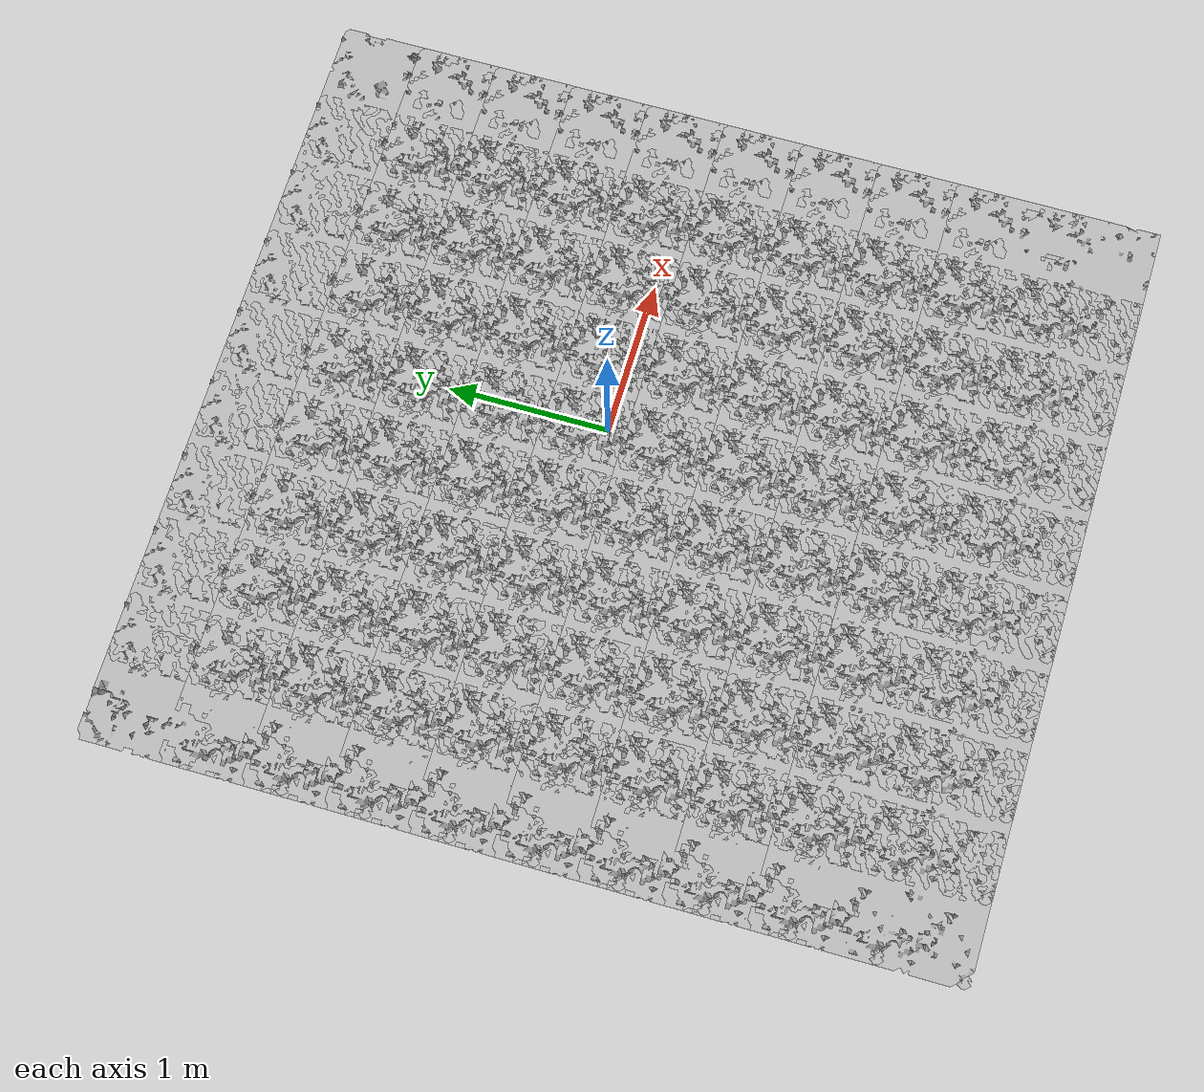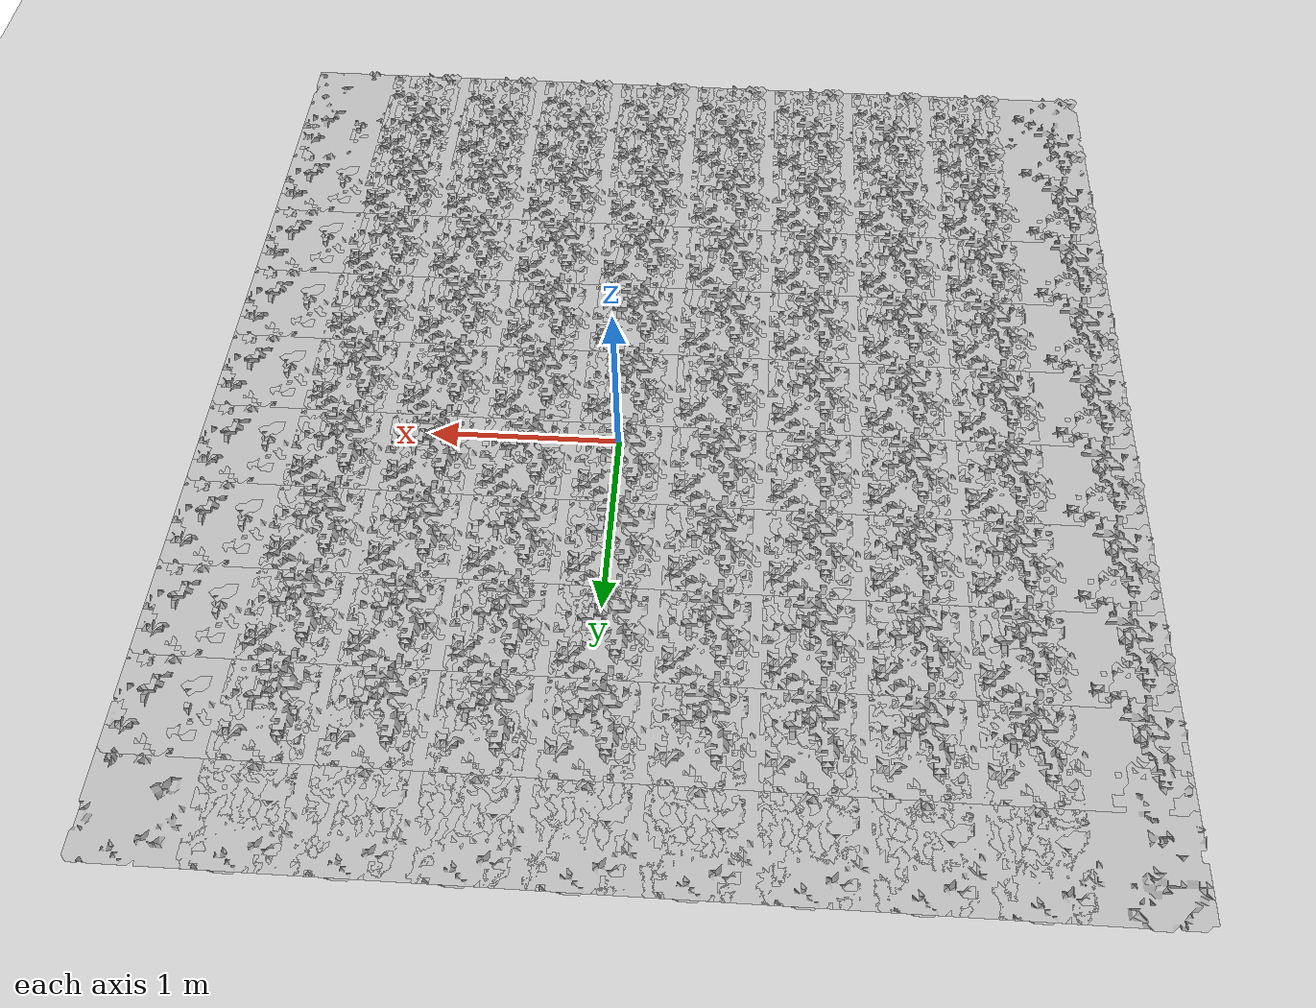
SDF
<sdf version="1.6">
 <world name="default">
  <light name="sun" type="directional">
   <pose>0 0 10 0 -0 0</pose>
   <diffuse>0.8 0.8 0.8 1</diffuse>
   <specular>0.2 0.2 0.2 1</specular>
   <attenuation>
    <range>1000</range>
    <constant>0.9</constant>
    <linear>0.01</linear>
    <quadratic>0.001</quadratic>
   </attenuation>
   <direction>-0.5 0.1 -0.9</direction>
  </light>
  <model name="ground_plane">
   <static>1</static>
   <link name="link">
    <collision name="collision">
     <geometry><plane><normal>0 0 1</normal><size>100 100</size></plane></geometry>
     <surface>
      <contact><collide_bitmask>65535</collide_bitmask></contact>
      <friction><ode><mu>100</mu><mu2>50</mu2></ode></friction>
     </surface>
    </collision>
    <visual name="visual">
     <cast_shadows>0</cast_shadows>
     <geometry><plane><normal>0 0 1</normal><size>100 100</size></plane></geometry>
     <material>
      <script><uri>file://media/materials/scripts/gazebo.material</uri><name>Gazebo/Grey</name></script>
     </material>
    </visual>
   </link>
  </model>
  <gravity>0 0 -9.8</gravity>
  <magnetic_field>6e-06 2.3e-05 -4.2e-05</magnetic_field>
  <atmosphere type="adiabatic"/>
  <physics name="default_physics" default="0" type="ode">
   <max_step_size>0.001</max_step_size>
   <real_time_factor>1</real_time_factor>
   <real_time_update_rate>1000</real_time_update_rate>
  </physics>
  <scene><ambient>0.4 0.4 0.4 1</ambient><background>0.7 0.7 0.7 1</background><shadows>1</shadows></scene>
  <audio><device>default</device></audio>
  <spherical_coordinates>
   <surface_model>EARTH_WGS84</surface_model>
   <latitude_deg>0</latitude_deg>
   <longitude_deg>0</longitude_deg>
   <elevation>0</elevation>
   <heading_deg>0</heading_deg>
  </spherical_coordinates>
  <model name="my_terrain">
   <link name="base_link">
    <inertial>
     <pose>-0.25 -0.25 0 0 -0 0</pose>
     <mass>0.81</mass>
     <inertia>
      <ixx>2.16</ixx>
      <ixy>-0.810003</ixy>
      <ixz>0.809997</ixz>
      <iyy>2.16001</iyy>
      <iyz>-0.81</iyz>
      <izz>3.50999</izz>
     </inertia>
    </inertial>
    <collision name="base_link_fixed_joint_lump__my_terraini0j0_collision">
     <pose>-2.25 -2.25 0 1.5708 -0 0</pose>
     <geometry>
      <mesh>
       <scale>0.001 0.001 0.001</scale>
       <uri>/home/tim/EARL_ws/src/L3DP_EARL/earl_gazebo/stl/gravel_l.dae</uri>
      </mesh>
     </geometry>
    </collision>
    <collision name="base_link_fixed_joint_lump__my_terraini0j1_collision_1">
     <pose>-2.25 -1.75 0 1.5708 -0 0</pose>
     <geometry>
      <mesh>
       <scale>0.001 0.001 0.001</scale>
       <uri>/home/tim/EARL_ws/src/L3DP_EARL/earl_gazebo/stl/gravel_l.dae</uri>
      </mesh>
     </geometry>
    </collision>
    <collision name="base_link_fixed_joint_lump__my_terraini0j2_collision_2">
     <pose>-2.25 -1.25 0 1.5708 -0 0</pose>
     <geometry>
      <mesh>
       <scale>0.001 0.001 0.001</scale>
       <uri>/home/tim/EARL_ws/src/L3DP_EARL/earl_gazebo/stl/gravel_l.dae</uri>
      </mesh>
     </geometry>
    </collision>
    <collision name="base_link_fixed_joint_lump__my_terraini0j3_collision_3">
     <pose>-2.25 -0.75 0 1.5708 -0 0</pose>
     <geometry>
      <mesh>
       <scale>0.001 0.001 0.001</scale>
       <uri>/home/tim/EARL_ws/src/L3DP_EARL/earl_gazebo/stl/gravel_l.dae</uri>
      </mesh>
     </geometry>
    </collision>
    <collision name="base_link_fixed_joint_lump__my_terraini0j4_collision_4">
     <pose>-2.25 -0.25 0 1.5708 -0 0</pose>
     <geometry>
      <mesh>
       <scale>0.001 0.001 0.001</scale>
       <uri>/home/tim/EARL_ws/src/L3DP_EARL/earl_gazebo/stl/gravel_l.dae</uri>
      </mesh>
     </geometry>
    </collision>
    <collision name="base_link_fixed_joint_lump__my_terraini0j5_collision_5">
     <pose>-2.25 0.25 0 1.5708 -0 0</pose>
     <geometry>
      <mesh>
       <scale>0.001 0.001 0.001</scale>
       <uri>/home/tim/EARL_ws/src/L3DP_EARL/earl_gazebo/stl/gravel_l.dae</uri>
      </mesh>
     </geometry>
    </collision>
    <collision name="base_link_fixed_joint_lump__my_terraini0j6_collision_6">
     <pose>-2.25 0.75 0 1.5708 -0 0</pose>
     <geometry>
      <mesh>
       <scale>0.001 0.001 0.001</scale>
       <uri>/home/tim/EARL_ws/src/L3DP_EARL/earl_gazebo/stl/gravel_l.dae</uri>
      </mesh>
     </geometry>
    </collision>
    <collision name="base_link_fixed_joint_lump__my_terraini0j7_collision_7">
     <pose>-2.25 1.25 0 1.5708 -0 0</pose>
     <geometry>
      <mesh>
       <scale>0.001 0.001 0.001</scale>
       <uri>/home/tim/EARL_ws/src/L3DP_EARL/earl_gazebo/stl/gravel_l.dae</uri>
      </mesh>
     </geometry>
    </collision>
    <collision name="base_link_fixed_joint_lump__my_terraini0j8_collision_8">
     <pose>-2.25 1.75 0 1.5708 -0 0</pose>
     <geometry>
      <mesh>
       <scale>0.001 0.001 0.001</scale>
       <uri>/home/tim/EARL_ws/src/L3DP_EARL/earl_gazebo/stl/gravel_l.dae</uri>
      </mesh>
     </geometry>
    </collision>
    <collision name="base_link_fixed_joint_lump__my_terraini1j0_collision_9">
     <pose>-1.75 -2.25 0 1.5708 -0 0</pose>
     <geometry>
      <mesh>
       <scale>0.001 0.001 0.001</scale>
       <uri>/home/tim/EARL_ws/src/L3DP_EARL/earl_gazebo/stl/gravel_l.dae</uri>
      </mesh>
     </geometry>
    </collision>
    <collision name="base_link_fixed_joint_lump__my_terraini1j1_collision_10">
     <pose>-1.75 -1.75 0 1.5708 -0 0</pose>
     <geometry>
      <mesh>
       <scale>0.001 0.001 0.001</scale>
       <uri>/home/tim/EARL_ws/src/L3DP_EARL/earl_gazebo/stl/gravel_l.dae</uri>
      </mesh>
     </geometry>
    </collision>
    <collision name="base_link_fixed_joint_lump__my_terraini1j2_collision_11">
     <pose>-1.75 -1.25 0 1.5708 -0 0</pose>
     <geometry>
      <mesh>
       <scale>0.001 0.001 0.001</scale>
       <uri>/home/tim/EARL_ws/src/L3DP_EARL/earl_gazebo/stl/gravel_l.dae</uri>
      </mesh>
     </geometry>
    </collision>
    <collision name="base_link_fixed_joint_lump__my_terraini1j3_collision_12">
     <pose>-1.75 -0.75 0 1.5708 -0 0</pose>
     <geometry>
      <mesh>
       <scale>0.001 0.001 0.001</scale>
       <uri>/home/tim/EARL_ws/src/L3DP_EARL/earl_gazebo/stl/gravel_l.dae</uri>
      </mesh>
     </geometry>
    </collision>
    <collision name="base_link_fixed_joint_lump__my_terraini1j4_collision_13">
     <pose>-1.75 -0.25 0 1.5708 -0 0</pose>
     <geometry>
      <mesh>
       <scale>0.001 0.001 0.001</scale>
       <uri>/home/tim/EARL_ws/src/L3DP_EARL/earl_gazebo/stl/gravel_l.dae</uri>
      </mesh>
     </geometry>
    </collision>
    <collision name="base_link_fixed_joint_lump__my_terraini1j5_collision_14">
     <pose>-1.75 0.25 0 1.5708 -0 0</pose>
     <geometry>
      <mesh>
       <scale>0.001 0.001 0.001</scale>
       <uri>/home/tim/EARL_ws/src/L3DP_EARL/earl_gazebo/stl/gravel_l.dae</uri>
      </mesh>
     </geometry>
    </collision>
    <collision name="base_link_fixed_joint_lump__my_terraini1j6_collision_15">
     <pose>-1.75 0.75 0 1.5708 -0 0</pose>
     <geometry>
      <mesh>
       <scale>0.001 0.001 0.001</scale>
       <uri>/home/tim/EARL_ws/src/L3DP_EARL/earl_gazebo/stl/gravel_l.dae</uri>
      </mesh>
     </geometry>
    </collision>
    <collision name="base_link_fixed_joint_lump__my_terraini1j7_collision_16">
     <pose>-1.75 1.25 0 1.5708 -0 0</pose>
     <geometry>
      <mesh>
       <scale>0.001 0.001 0.001</scale>
       <uri>/home/tim/EARL_ws/src/L3DP_EARL/earl_gazebo/stl/gravel_l.dae</uri>
      </mesh>
     </geometry>
    </collision>
    <collision name="base_link_fixed_joint_lump__my_terraini1j8_collision_17">
     <pose>-1.75 1.75 0 1.5708 -0 0</pose>
     <geometry>
      <mesh>
       <scale>0.001 0.001 0.001</scale>
       <uri>/home/tim/EARL_ws/src/L3DP_EARL/earl_gazebo/stl/gravel_l.dae</uri>
      </mesh>
     </geometry>
    </collision>
    <collision name="base_link_fixed_joint_lump__my_terraini2j0_collision_18">
     <pose>-1.25 -2.25 0 1.5708 -0 0</pose>
     <geometry>
      <mesh>
       <scale>0.001 0.001 0.001</scale>
       <uri>/home/tim/EARL_ws/src/L3DP_EARL/earl_gazebo/stl/gravel_l.dae</uri>
      </mesh>
     </geometry>
    </collision>
    <collision name="base_link_fixed_joint_lump__my_terraini2j1_collision_19">
     <pose>-1.25 -1.75 0 1.5708 -0 0</pose>
     <geometry>
      <mesh>
       <scale>0.001 0.001 0.001</scale>
       <uri>/home/tim/EARL_ws/src/L3DP_EARL/earl_gazebo/stl/gravel_l.dae</uri>
      </mesh>
     </geometry>
    </collision>
    <collision name="base_link_fixed_joint_lump__my_terraini2j2_collision_20">
     <pose>-1.25 -1.25 0 1.5708 -0 0</pose>
     <geometry>
      <mesh>
       <scale>0.001 0.001 0.001</scale>
       <uri>/home/tim/EARL_ws/src/L3DP_EARL/earl_gazebo/stl/gravel_l.dae</uri>
      </mesh>
     </geometry>
    </collision>
    <collision name="base_link_fixed_joint_lump__my_terraini2j3_collision_21">
     <pose>-1.25 -0.75 0 1.5708 -0 0</pose>
     <geometry>
      <mesh>
       <scale>0.001 0.001 0.001</scale>
       <uri>/home/tim/EARL_ws/src/L3DP_EARL/earl_gazebo/stl/gravel_l.dae</uri>
      </mesh>
     </geometry>
    </collision>
    <collision name="base_link_fixed_joint_lump__my_terraini2j4_collision_22">
     <pose>-1.25 -0.25 0 1.5708 -0 0</pose>
     <geometry>
      <mesh>
       <scale>0.001 0.001 0.001</scale>
       <uri>/home/tim/EARL_ws/src/L3DP_EARL/earl_gazebo/stl/gravel_l.dae</uri>
      </mesh>
     </geometry>
    </collision>
    <collision name="base_link_fixed_joint_lump__my_terraini2j5_collision_23">
     <pose>-1.25 0.25 0 1.5708 -0 0</pose>
     <geometry>
      <mesh>
       <scale>0.001 0.001 0.001</scale>
       <uri>/home/tim/EARL_ws/src/L3DP_EARL/earl_gazebo/stl/gravel_l.dae</uri>
      </mesh>
     </geometry>
    </collision>
    <collision name="base_link_fixed_joint_lump__my_terraini2j6_collision_24">
     <pose>-1.25 0.75 0 1.5708 -0 0</pose>
     <geometry>
      <mesh>
       <scale>0.001 0.001 0.001</scale>
       <uri>/home/tim/EARL_ws/src/L3DP_EARL/earl_gazebo/stl/gravel_l.dae</uri>
      </mesh>
     </geometry>
    </collision>
    <collision name="base_link_fixed_joint_lump__my_terraini2j7_collision_25">
     <pose>-1.25 1.25 0 1.5708 -0 0</pose>
     <geometry>
      <mesh>
       <scale>0.001 0.001 0.001</scale>
       <uri>/home/tim/EARL_ws/src/L3DP_EARL/earl_gazebo/stl/gravel_l.dae</uri>
      </mesh>
     </geometry>
    </collision>
    <collision name="base_link_fixed_joint_lump__my_terraini2j8_collision_26">
     <pose>-1.25 1.75 0 1.5708 -0 0</pose>
     <geometry>
      <mesh>
       <scale>0.001 0.001 0.001</scale>
       <uri>/home/tim/EARL_ws/src/L3DP_EARL/earl_gazebo/stl/gravel_l.dae</uri>
      </mesh>
     </geometry>
    </collision>
    <collision name="base_link_fixed_joint_lump__my_terraini3j0_collision_27">
     <pose>-0.75 -2.25 0 1.5708 -0 0</pose>
     <geometry>
      <mesh>
       <scale>0.001 0.001 0.001</scale>
       <uri>/home/tim/EARL_ws/src/L3DP_EARL/earl_gazebo/stl/gravel_l.dae</uri>
      </mesh>
     </geometry>
    </collision>
    <collision name="base_link_fixed_joint_lump__my_terraini3j1_collision_28">
     <pose>-0.75 -1.75 0 1.5708 -0 0</pose>
     <geometry>
      <mesh>
       <scale>0.001 0.001 0.001</scale>
       <uri>/home/tim/EARL_ws/src/L3DP_EARL/earl_gazebo/stl/gravel_l.dae</uri>
      </mesh>
     </geometry>
    </collision>
    <collision name="base_link_fixed_joint_lump__my_terraini3j2_collision_29">
     <pose>-0.75 -1.25 0 1.5708 -0 0</pose>
     <geometry>
      <mesh>
       <scale>0.001 0.001 0.001</scale>
       <uri>/home/tim/EARL_ws/src/L3DP_EARL/earl_gazebo/stl/gravel_l.dae</uri>
      </mesh>
     </geometry>
    </collision>
    <collision name="base_link_fixed_joint_lump__my_terraini3j3_collision_30">
     <pose>-0.75 -0.75 0 1.5708 -0 0</pose>
     <geometry>
      <mesh>
       <scale>0.001 0.001 0.001</scale>
       <uri>/home/tim/EARL_ws/src/L3DP_EARL/earl_gazebo/stl/gravel_l.dae</uri>
      </mesh>
     </geometry>
    </collision>
    <collision name="base_link_fixed_joint_lump__my_terraini3j4_collision_31">
     <pose>-0.75 -0.25 0 1.5708 -0 0</pose>
     <geometry>
      <mesh>
       <scale>0.001 0.001 0.001</scale>
       <uri>/home/tim/EARL_ws/src/L3DP_EARL/earl_gazebo/stl/gravel_l.dae</uri>
      </mesh>
     </geometry>
    </collision>
    <collision name="base_link_fixed_joint_lump__my_terraini3j5_collision_32">
     <pose>-0.75 0.25 0 1.5708 -0 0</pose>
     <geometry>
      <mesh>
       <scale>0.001 0.001 0.001</scale>
       <uri>/home/tim/EARL_ws/src/L3DP_EARL/earl_gazebo/stl/gravel_l.dae</uri>
      </mesh>
     </geometry>
    </collision>
    <collision name="base_link_fixed_joint_lump__my_terraini3j6_collision_33">
     <pose>-0.75 0.75 0 1.5708 -0 0</pose>
     <geometry>
      <mesh>
       <scale>0.001 0.001 0.001</scale>
       <uri>/home/tim/EARL_ws/src/L3DP_EARL/earl_gazebo/stl/gravel_l.dae</uri>
      </mesh>
     </geometry>
    </collision>
    <collision name="base_link_fixed_joint_lump__my_terraini3j7_collision_34">
     <pose>-0.75 1.25 0 1.5708 -0 0</pose>
     <geometry>
      <mesh>
       <scale>0.001 0.001 0.001</scale>
       <uri>/home/tim/EARL_ws/src/L3DP_EARL/earl_gazebo/stl/gravel_l.dae</uri>
      </mesh>
     </geometry>
    </collision>
    <collision name="base_link_fixed_joint_lump__my_terraini3j8_collision_35">
     <pose>-0.75 1.75 0 1.5708 -0 0</pose>
     <geometry>
      <mesh>
       <scale>0.001 0.001 0.001</scale>
       <uri>/home/tim/EARL_ws/src/L3DP_EARL/earl_gazebo/stl/gravel_l.dae</uri>
      </mesh>
     </geometry>
    </collision>
    <collision name="base_link_fixed_joint_lump__my_terraini4j0_collision_36">
     <pose>-0.25 -2.25 0 1.5708 -0 0</pose>
     <geometry>
      <mesh>
       <scale>0.001 0.001 0.001</scale>
       <uri>/home/tim/EARL_ws/src/L3DP_EARL/earl_gazebo/stl/gravel_l.dae</uri>
      </mesh>
     </geometry>
    </collision>
    <collision name="base_link_fixed_joint_lump__my_terraini4j1_collision_37">
     <pose>-0.25 -1.75 0 1.5708 -0 0</pose>
     <geometry>
      <mesh>
       <scale>0.001 0.001 0.001</scale>
       <uri>/home/tim/EARL_ws/src/L3DP_EARL/earl_gazebo/stl/gravel_l.dae</uri>
      </mesh>
     </geometry>
    </collision>
    <collision name="base_link_fixed_joint_lump__my_terraini4j2_collision_38">
     <pose>-0.25 -1.25 0 1.5708 -0 0</pose>
     <geometry>
      <mesh>
       <scale>0.001 0.001 0.001</scale>
       <uri>/home/tim/EARL_ws/src/L3DP_EARL/earl_gazebo/stl/gravel_l.dae</uri>
      </mesh>
     </geometry>
    </collision>
    <collision name="base_link_fixed_joint_lump__my_terraini4j3_collision_39">
     <pose>-0.25 -0.75 0 1.5708 -0 0</pose>
     <geometry>
      <mesh>
       <scale>0.001 0.001 0.001</scale>
       <uri>/home/tim/EARL_ws/src/L3DP_EARL/earl_gazebo/stl/gravel_l.dae</uri>
      </mesh>
     </geometry>
    </collision>
    <collision name="base_link_fixed_joint_lump__my_terraini4j4_collision_40">
     <pose>-0.25 -0.25 0 1.5708 -0 0</pose>
     <geometry>
      <mesh>
       <scale>0.001 0.001 0.001</scale>
       <uri>/home/tim/EARL_ws/src/L3DP_EARL/earl_gazebo/stl/gravel_l.dae</uri>
      </mesh>
     </geometry>
    </collision>
    <collision name="base_link_fixed_joint_lump__my_terraini4j5_collision_41">
     <pose>-0.25 0.25 0 1.5708 -0 0</pose>
     <geometry>
      <mesh>
       <scale>0.001 0.001 0.001</scale>
       <uri>/home/tim/EARL_ws/src/L3DP_EARL/earl_gazebo/stl/gravel_l.dae</uri>
      </mesh>
     </geometry>
    </collision>
    <collision name="base_link_fixed_joint_lump__my_terraini4j6_collision_42">
     <pose>-0.25 0.75 0 1.5708 -0 0</pose>
     <geometry>
      <mesh>
       <scale>0.001 0.001 0.001</scale>
       <uri>/home/tim/EARL_ws/src/L3DP_EARL/earl_gazebo/stl/gravel_l.dae</uri>
      </mesh>
     </geometry>
    </collision>
    <collision name="base_link_fixed_joint_lump__my_terraini4j7_collision_43">
     <pose>-0.25 1.25 0 1.5708 -0 0</pose>
     <geometry>
      <mesh>
       <scale>0.001 0.001 0.001</scale>
       <uri>/home/tim/EARL_ws/src/L3DP_EARL/earl_gazebo/stl/gravel_l.dae</uri>
      </mesh>
     </geometry>
    </collision>
    <collision name="base_link_fixed_joint_lump__my_terraini4j8_collision_44">
     <pose>-0.25 1.75 0 1.5708 -0 0</pose>
     <geometry>
      <mesh>
       <scale>0.001 0.001 0.001</scale>
       <uri>/home/tim/EARL_ws/src/L3DP_EARL/earl_gazebo/stl/gravel_l.dae</uri>
      </mesh>
     </geometry>
    </collision>
    <collision name="base_link_fixed_joint_lump__my_terraini5j0_collision_45">
     <pose>0.25 -2.25 0 1.5708 -0 0</pose>
     <geometry>
      <mesh>
       <scale>0.001 0.001 0.001</scale>
       <uri>/home/tim/EARL_ws/src/L3DP_EARL/earl_gazebo/stl/gravel_l.dae</uri>
      </mesh>
     </geometry>
    </collision>
    <collision name="base_link_fixed_joint_lump__my_terraini5j1_collision_46">
     <pose>0.25 -1.75 0 1.5708 -0 0</pose>
     <geometry>
      <mesh>
       <scale>0.001 0.001 0.001</scale>
       <uri>/home/tim/EARL_ws/src/L3DP_EARL/earl_gazebo/stl/gravel_l.dae</uri>
      </mesh>
     </geometry>
    </collision>
    <collision name="base_link_fixed_joint_lump__my_terraini5j2_collision_47">
     <pose>0.25 -1.25 0 1.5708 -0 0</pose>
     <geometry>
      <mesh>
       <scale>0.001 0.001 0.001</scale>
       <uri>/home/tim/EARL_ws/src/L3DP_EARL/earl_gazebo/stl/gravel_l.dae</uri>
      </mesh>
     </geometry>
    </collision>
    <collision name="base_link_fixed_joint_lump__my_terraini5j3_collision_48">
     <pose>0.25 -0.75 0 1.5708 -0 0</pose>
     <geometry>
      <mesh>
       <scale>0.001 0.001 0.001</scale>
       <uri>/home/tim/EARL_ws/src/L3DP_EARL/earl_gazebo/stl/gravel_l.dae</uri>
      </mesh>
     </geometry>
    </collision>
    <collision name="base_link_fixed_joint_lump__my_terraini5j4_collision_49">
     <pose>0.25 -0.25 0 1.5708 -0 0</pose>
     <geometry>
      <mesh>
       <scale>0.001 0.001 0.001</scale>
       <uri>/home/tim/EARL_ws/src/L3DP_EARL/earl_gazebo/stl/gravel_l.dae</uri>
      </mesh>
     </geometry>
    </collision>
    <collision name="base_link_fixed_joint_lump__my_terraini5j5_collision_50">
     <pose>0.25 0.25 0 1.5708 -0 0</pose>
     <geometry>
      <mesh>
       <scale>0.001 0.001 0.001</scale>
       <uri>/home/tim/EARL_ws/src/L3DP_EARL/earl_gazebo/stl/gravel_l.dae</uri>
      </mesh>
     </geometry>
    </collision>
    <collision name="base_link_fixed_joint_lump__my_terraini5j6_collision_51">
     <pose>0.25 0.75 0 1.5708 -0 0</pose>
     <geometry>
      <mesh>
       <scale>0.001 0.001 0.001</scale>
       <uri>/home/tim/EARL_ws/src/L3DP_EARL/earl_gazebo/stl/gravel_l.dae</uri>
      </mesh>
     </geometry>
    </collision>
    <collision name="base_link_fixed_joint_lump__my_terraini5j7_collision_52">
     <pose>0.25 1.25 0 1.5708 -0 0</pose>
     <geometry>
      <mesh>
       <scale>0.001 0.001 0.001</scale>
       <uri>/home/tim/EARL_ws/src/L3DP_EARL/earl_gazebo/stl/gravel_l.dae</uri>
      </mesh>
     </geometry>
    </collision>
    <collision name="base_link_fixed_joint_lump__my_terraini5j8_collision_53">
     <pose>0.25 1.75 0 1.5708 -0 0</pose>
     <geometry>
      <mesh>
       <scale>0.001 0.001 0.001</scale>
       <uri>/home/tim/EARL_ws/src/L3DP_EARL/earl_gazebo/stl/gravel_l.dae</uri>
      </mesh>
     </geometry>
    </collision>
    <collision name="base_link_fixed_joint_lump__my_terraini6j0_collision_54">
     <pose>0.75 -2.25 0 1.5708 -0 0</pose>
     <geometry>
      <mesh>
       <scale>0.001 0.001 0.001</scale>
       <uri>/home/tim/EARL_ws/src/L3DP_EARL/earl_gazebo/stl/gravel_l.dae</uri>
      </mesh>
     </geometry>
    </collision>
    <collision name="base_link_fixed_joint_lump__my_terraini6j1_collision_55">
     <pose>0.75 -1.75 0 1.5708 -0 0</pose>
     <geometry>
      <mesh>
       <scale>0.001 0.001 0.001</scale>
       <uri>/home/tim/EARL_ws/src/L3DP_EARL/earl_gazebo/stl/gravel_l.dae</uri>
      </mesh>
     </geometry>
    </collision>
    <collision name="base_link_fixed_joint_lump__my_terraini6j2_collision_56">
     <pose>0.75 -1.25 0 1.5708 -0 0</pose>
     <geometry>
      <mesh>
       <scale>0.001 0.001 0.001</scale>
       <uri>/home/tim/EARL_ws/src/L3DP_EARL/earl_gazebo/stl/gravel_l.dae</uri>
      </mesh>
     </geometry>
    </collision>
    <collision name="base_link_fixed_joint_lump__my_terraini6j3_collision_57">
     <pose>0.75 -0.75 0 1.5708 -0 0</pose>
     <geometry>
      <mesh>
       <scale>0.001 0.001 0.001</scale>
       <uri>/home/tim/EARL_ws/src/L3DP_EARL/earl_gazebo/stl/gravel_l.dae</uri>
      </mesh>
     </geometry>
    </collision>
    <collision name="base_link_fixed_joint_lump__my_terraini6j4_collision_58">
     <pose>0.75 -0.25 0 1.5708 -0 0</pose>
     <geometry>
      <mesh>
       <scale>0.001 0.001 0.001</scale>
       <uri>/home/tim/EARL_ws/src/L3DP_EARL/earl_gazebo/stl/gravel_l.dae</uri>
      </mesh>
     </geometry>
    </collision>
    <collision name="base_link_fixed_joint_lump__my_terraini6j5_collision_59">
     <pose>0.75 0.25 0 1.5708 -0 0</pose>
     <geometry>
      <mesh>
       <scale>0.001 0.001 0.001</scale>
       <uri>/home/tim/EARL_ws/src/L3DP_EARL/earl_gazebo/stl/gravel_l.dae</uri>
      </mesh>
     </geometry>
    </collision>
    <collision name="base_link_fixed_joint_lump__my_terraini6j6_collision_60">
     <pose>0.75 0.75 0 1.5708 -0 0</pose>
     <geometry>
      <mesh>
       <scale>0.001 0.001 0.001</scale>
       <uri>/home/tim/EARL_ws/src/L3DP_EARL/earl_gazebo/stl/gravel_l.dae</uri>
      </mesh>
     </geometry>
    </collision>
    <collision name="base_link_fixed_joint_lump__my_terraini6j7_collision_61">
     <pose>0.75 1.25 0 1.5708 -0 0</pose>
     <geometry>
      <mesh>
       <scale>0.001 0.001 0.001</scale>
       <uri>/home/tim/EARL_ws/src/L3DP_EARL/earl_gazebo/stl/gravel_l.dae</uri>
      </mesh>
     </geometry>
    </collision>
    <collision name="base_link_fixed_joint_lump__my_terraini6j8_collision_62">
     <pose>0.75 1.75 0 1.5708 -0 0</pose>
     <geometry>
      <mesh>
       <scale>0.001 0.001 0.001</scale>
       <uri>/home/tim/EARL_ws/src/L3DP_EARL/earl_gazebo/stl/gravel_l.dae</uri>
      </mesh>
     </geometry>
    </collision>
    <collision name="base_link_fixed_joint_lump__my_terraini7j0_collision_63">
     <pose>1.25 -2.25 0 1.5708 -0 0</pose>
     <geometry>
      <mesh>
       <scale>0.001 0.001 0.001</scale>
       <uri>/home/tim/EARL_ws/src/L3DP_EARL/earl_gazebo/stl/gravel_l.dae</uri>
      </mesh>
     </geometry>
    </collision>
    <collision name="base_link_fixed_joint_lump__my_terraini7j1_collision_64">
     <pose>1.25 -1.75 0 1.5708 -0 0</pose>
     <geometry>
      <mesh>
       <scale>0.001 0.001 0.001</scale>
       <uri>/home/tim/EARL_ws/src/L3DP_EARL/earl_gazebo/stl/gravel_l.dae</uri>
      </mesh>
     </geometry>
    </collision>
    <collision name="base_link_fixed_joint_lump__my_terraini7j2_collision_65">
     <pose>1.25 -1.25 0 1.5708 -0 0</pose>
     <geometry>
      <mesh>
       <scale>0.001 0.001 0.001</scale>
       <uri>/home/tim/EARL_ws/src/L3DP_EARL/earl_gazebo/stl/gravel_l.dae</uri>
      </mesh>
     </geometry>
    </collision>
    <collision name="base_link_fixed_joint_lump__my_terraini7j3_collision_66">
     <pose>1.25 -0.75 0 1.5708 -0 0</pose>
     <geometry>
      <mesh>
       <scale>0.001 0.001 0.001</scale>
       <uri>/home/tim/EARL_ws/src/L3DP_EARL/earl_gazebo/stl/gravel_l.dae</uri>
      </mesh>
     </geometry>
    </collision>
    <collision name="base_link_fixed_joint_lump__my_terraini7j4_collision_67">
     <pose>1.25 -0.25 0 1.5708 -0 0</pose>
     <geometry>
      <mesh>
       <scale>0.001 0.001 0.001</scale>
       <uri>/home/tim/EARL_ws/src/L3DP_EARL/earl_gazebo/stl/gravel_l.dae</uri>
      </mesh>
     </geometry>
    </collision>
    <collision name="base_link_fixed_joint_lump__my_terraini7j5_collision_68">
     <pose>1.25 0.25 0 1.5708 -0 0</pose>
     <geometry>
      <mesh>
       <scale>0.001 0.001 0.001</scale>
       <uri>/home/tim/EARL_ws/src/L3DP_EARL/earl_gazebo/stl/gravel_l.dae</uri>
      </mesh>
     </geometry>
    </collision>
    <collision name="base_link_fixed_joint_lump__my_terraini7j6_collision_69">
     <pose>1.25 0.75 0 1.5708 -0 0</pose>
     <geometry>
      <mesh>
       <scale>0.001 0.001 0.001</scale>
       <uri>/home/tim/EARL_ws/src/L3DP_EARL/earl_gazebo/stl/gravel_l.dae</uri>
      </mesh>
     </geometry>
    </collision>
    <collision name="base_link_fixed_joint_lump__my_terraini7j7_collision_70">
     <pose>1.25 1.25 0 1.5708 -0 0</pose>
     <geometry>
      <mesh>
       <scale>0.001 0.001 0.001</scale>
       <uri>/home/tim/EARL_ws/src/L3DP_EARL/earl_gazebo/stl/gravel_l.dae</uri>
      </mesh>
     </geometry>
    </collision>
    <collision name="base_link_fixed_joint_lump__my_terraini7j8_collision_71">
     <pose>1.25 1.75 0 1.5708 -0 0</pose>
     <geometry>
      <mesh>
       <scale>0.001 0.001 0.001</scale>
       <uri>/home/tim/EARL_ws/src/L3DP_EARL/earl_gazebo/stl/gravel_l.dae</uri>
      </mesh>
     </geometry>
    </collision>
    <collision name="base_link_fixed_joint_lump__my_terraini8j0_collision_72">
     <pose>1.75 -2.25 0 1.5708 -0 0</pose>
     <geometry>
      <mesh>
       <scale>0.001 0.001 0.001</scale>
       <uri>/home/tim/EARL_ws/src/L3DP_EARL/earl_gazebo/stl/gravel_l.dae</uri>
      </mesh>
     </geometry>
    </collision>
    <collision name="base_link_fixed_joint_lump__my_terraini8j1_collision_73">
     <pose>1.75 -1.75 0 1.5708 -0 0</pose>
     <geometry>
      <mesh>
       <scale>0.001 0.001 0.001</scale>
       <uri>/home/tim/EARL_ws/src/L3DP_EARL/earl_gazebo/stl/gravel_l.dae</uri>
      </mesh>
     </geometry>
    </collision>
    <collision name="base_link_fixed_joint_lump__my_terraini8j2_collision_74">
     <pose>1.75 -1.25 0 1.5708 -0 0</pose>
     <geometry>
      <mesh>
       <scale>0.001 0.001 0.001</scale>
       <uri>/home/tim/EARL_ws/src/L3DP_EARL/earl_gazebo/stl/gravel_l.dae</uri>
      </mesh>
     </geometry>
    </collision>
    <collision name="base_link_fixed_joint_lump__my_terraini8j3_collision_75">
     <pose>1.75 -0.75 0 1.5708 -0 0</pose>
     <geometry>
      <mesh>
       <scale>0.001 0.001 0.001</scale>
       <uri>/home/tim/EARL_ws/src/L3DP_EARL/earl_gazebo/stl/gravel_l.dae</uri>
      </mesh>
     </geometry>
    </collision>
    <collision name="base_link_fixed_joint_lump__my_terraini8j4_collision_76">
     <pose>1.75 -0.25 0 1.5708 -0 0</pose>
     <geometry>
      <mesh>
       <scale>0.001 0.001 0.001</scale>
       <uri>/home/tim/EARL_ws/src/L3DP_EARL/earl_gazebo/stl/gravel_l.dae</uri>
      </mesh>
     </geometry>
    </collision>
    <collision name="base_link_fixed_joint_lump__my_terraini8j5_collision_77">
     <pose>1.75 0.25 0 1.5708 -0 0</pose>
     <geometry>
      <mesh>
       <scale>0.001 0.001 0.001</scale>
       <uri>/home/tim/EARL_ws/src/L3DP_EARL/earl_gazebo/stl/gravel_l.dae</uri>
      </mesh>
     </geometry>
    </collision>
    <collision name="base_link_fixed_joint_lump__my_terraini8j6_collision_78">
     <pose>1.75 0.75 0 1.5708 -0 0</pose>
     <geometry>
      <mesh>
       <scale>0.001 0.001 0.001</scale>
       <uri>/home/tim/EARL_ws/src/L3DP_EARL/earl_gazebo/stl/gravel_l.dae</uri>
      </mesh>
     </geometry>
    </collision>
    <collision name="base_link_fixed_joint_lump__my_terraini8j7_collision_79">
     <pose>1.75 1.25 0 1.5708 -0 0</pose>
     <geometry>
      <mesh>
       <scale>0.001 0.001 0.001</scale>
       <uri>/home/tim/EARL_ws/src/L3DP_EARL/earl_gazebo/stl/gravel_l.dae</uri>
      </mesh>
     </geometry>
    </collision>
    <collision name="base_link_fixed_joint_lump__my_terraini8j8_collision_80">
     <pose>1.75 1.75 0 1.5708 -0 0</pose>
     <geometry>
      <mesh>
       <scale>0.001 0.001 0.001</scale>
       <uri>/home/tim/EARL_ws/src/L3DP_EARL/earl_gazebo/stl/gravel_l.dae</uri>
      </mesh>
     </geometry>
    </collision>
    <visual name="base_link_fixed_joint_lump__my_terraini0j0_visual">
     <pose>-2.25 -2.25 0 1.5708 -0 0</pose>
     <geometry>
      <mesh>
       <scale>0.001 0.001 0.001</scale>
       <uri>/home/tim/EARL_ws/src/L3DP_EARL/earl_gazebo/stl/gravel_l.dae</uri>
      </mesh>
     </geometry>
    </visual>
    <visual name="base_link_fixed_joint_lump__my_terraini0j1_visual_1">
     <pose>-2.25 -1.75 0 1.5708 -0 0</pose>
     <geometry>
      <mesh>
       <scale>0.001 0.001 0.001</scale>
       <uri>/home/tim/EARL_ws/src/L3DP_EARL/earl_gazebo/stl/gravel_l.dae</uri>
      </mesh>
     </geometry>
    </visual>
    <visual name="base_link_fixed_joint_lump__my_terraini0j2_visual_2">
     <pose>-2.25 -1.25 0 1.5708 -0 0</pose>
     <geometry>
      <mesh>
       <scale>0.001 0.001 0.001</scale>
       <uri>/home/tim/EARL_ws/src/L3DP_EARL/earl_gazebo/stl/gravel_l.dae</uri>
      </mesh>
     </geometry>
    </visual>
    <visual name="base_link_fixed_joint_lump__my_terraini0j3_visual_3">
     <pose>-2.25 -0.75 0 1.5708 -0 0</pose>
     <geometry>
      <mesh>
       <scale>0.001 0.001 0.001</scale>
       <uri>/home/tim/EARL_ws/src/L3DP_EARL/earl_gazebo/stl/gravel_l.dae</uri>
      </mesh>
     </geometry>
    </visual>
    <visual name="base_link_fixed_joint_lump__my_terraini0j4_visual_4">
     <pose>-2.25 -0.25 0 1.5708 -0 0</pose>
     <geometry>
      <mesh>
       <scale>0.001 0.001 0.001</scale>
       <uri>/home/tim/EARL_ws/src/L3DP_EARL/earl_gazebo/stl/gravel_l.dae</uri>
      </mesh>
     </geometry>
    </visual>
    <visual name="base_link_fixed_joint_lump__my_terraini0j5_visual_5">
     <pose>-2.25 0.25 0 1.5708 -0 0</pose>
     <geometry>
      <mesh>
       <scale>0.001 0.001 0.001</scale>
       <uri>/home/tim/EARL_ws/src/L3DP_EARL/earl_gazebo/stl/gravel_l.dae</uri>
      </mesh>
     </geometry>
    </visual>
    <visual name="base_link_fixed_joint_lump__my_terraini0j6_visual_6">
     <pose>-2.25 0.75 0 1.5708 -0 0</pose>
     <geometry>
      <mesh>
       <scale>0.001 0.001 0.001</scale>
       <uri>/home/tim/EARL_ws/src/L3DP_EARL/earl_gazebo/stl/gravel_l.dae</uri>
      </mesh>
     </geometry>
    </visual>
    <visual name="base_link_fixed_joint_lump__my_terraini0j7_visual_7">
     <pose>-2.25 1.25 0 1.5708 -0 0</pose>
     <geometry>
      <mesh>
       <scale>0.001 0.001 0.001</scale>
       <uri>/home/tim/EARL_ws/src/L3DP_EARL/earl_gazebo/stl/gravel_l.dae</uri>
      </mesh>
     </geometry>
    </visual>
    <visual name="base_link_fixed_joint_lump__my_terraini0j8_visual_8">
     <pose>-2.25 1.75 0 1.5708 -0 0</pose>
     <geometry>
      <mesh>
       <scale>0.001 0.001 0.001</scale>
       <uri>/home/tim/EARL_ws/src/L3DP_EARL/earl_gazebo/stl/gravel_l.dae</uri>
      </mesh>
     </geometry>
    </visual>
    <visual name="base_link_fixed_joint_lump__my_terraini1j0_visual_9">
     <pose>-1.75 -2.25 0 1.5708 -0 0</pose>
     <geometry>
      <mesh>
       <scale>0.001 0.001 0.001</scale>
       <uri>/home/tim/EARL_ws/src/L3DP_EARL/earl_gazebo/stl/gravel_l.dae</uri>
      </mesh>
     </geometry>
    </visual>
    <visual name="base_link_fixed_joint_lump__my_terraini1j1_visual_10">
     <pose>-1.75 -1.75 0 1.5708 -0 0</pose>
     <geometry>
      <mesh>
       <scale>0.001 0.001 0.001</scale>
       <uri>/home/tim/EARL_ws/src/L3DP_EARL/earl_gazebo/stl/gravel_l.dae</uri>
      </mesh>
     </geometry>
    </visual>
    <visual name="base_link_fixed_joint_lump__my_terraini1j2_visual_11">
     <pose>-1.75 -1.25 0 1.5708 -0 0</pose>
     <geometry>
      <mesh>
       <scale>0.001 0.001 0.001</scale>
       <uri>/home/tim/EARL_ws/src/L3DP_EARL/earl_gazebo/stl/gravel_l.dae</uri>
      </mesh>
     </geometry>
    </visual>
    <visual name="base_link_fixed_joint_lump__my_terraini1j3_visual_12">
     <pose>-1.75 -0.75 0 1.5708 -0 0</pose>
     <geometry>
      <mesh>
       <scale>0.001 0.001 0.001</scale>
       <uri>/home/tim/EARL_ws/src/L3DP_EARL/earl_gazebo/stl/gravel_l.dae</uri>
      </mesh>
     </geometry>
    </visual>
    <visual name="base_link_fixed_joint_lump__my_terraini1j4_visual_13">
     <pose>-1.75 -0.25 0 1.5708 -0 0</pose>
     <geometry>
      <mesh>
       <scale>0.001 0.001 0.001</scale>
       <uri>/home/tim/EARL_ws/src/L3DP_EARL/earl_gazebo/stl/gravel_l.dae</uri>
      </mesh>
     </geometry>
    </visual>
    <visual name="base_link_fixed_joint_lump__my_terraini1j5_visual_14">
     <pose>-1.75 0.25 0 1.5708 -0 0</pose>
     <geometry>
      <mesh>
       <scale>0.001 0.001 0.001</scale>
       <uri>/home/tim/EARL_ws/src/L3DP_EARL/earl_gazebo/stl/gravel_l.dae</uri>
      </mesh>
     </geometry>
    </visual>
    <visual name="base_link_fixed_joint_lump__my_terraini1j6_visual_15">
     <pose>-1.75 0.75 0 1.5708 -0 0</pose>
     <geometry>
      <mesh>
       <scale>0.001 0.001 0.001</scale>
       <uri>/home/tim/EARL_ws/src/L3DP_EARL/earl_gazebo/stl/gravel_l.dae</uri>
      </mesh>
     </geometry>
    </visual>
    <visual name="base_link_fixed_joint_lump__my_terraini1j7_visual_16">
     <pose>-1.75 1.25 0 1.5708 -0 0</pose>
     <geometry>
      <mesh>
       <scale>0.001 0.001 0.001</scale>
       <uri>/home/tim/EARL_ws/src/L3DP_EARL/earl_gazebo/stl/gravel_l.dae</uri>
      </mesh>
     </geometry>
    </visual>
    <visual name="base_link_fixed_joint_lump__my_terraini1j8_visual_17">
     <pose>-1.75 1.75 0 1.5708 -0 0</pose>
     <geometry>
      <mesh>
       <scale>0.001 0.001 0.001</scale>
       <uri>/home/tim/EARL_ws/src/L3DP_EARL/earl_gazebo/stl/gravel_l.dae</uri>
      </mesh>
     </geometry>
    </visual>
    <visual name="base_link_fixed_joint_lump__my_terraini2j0_visual_18">
     <pose>-1.25 -2.25 0 1.5708 -0 0</pose>
     <geometry>
      <mesh>
       <scale>0.001 0.001 0.001</scale>
       <uri>/home/tim/EARL_ws/src/L3DP_EARL/earl_gazebo/stl/gravel_l.dae</uri>
      </mesh>
     </geometry>
    </visual>
    <visual name="base_link_fixed_joint_lump__my_terraini2j1_visual_19">
     <pose>-1.25 -1.75 0 1.5708 -0 0</pose>
     <geometry>
      <mesh>
       <scale>0.001 0.001 0.001</scale>
       <uri>/home/tim/EARL_ws/src/L3DP_EARL/earl_gazebo/stl/gravel_l.dae</uri>
      </mesh>
     </geometry>
    </visual>
    <visual name="base_link_fixed_joint_lump__my_terraini2j2_visual_20">
     <pose>-1.25 -1.25 0 1.5708 -0 0</pose>
     <geometry>
      <mesh>
       <scale>0.001 0.001 0.001</scale>
       <uri>/home/tim/EARL_ws/src/L3DP_EARL/earl_gazebo/stl/gravel_l.dae</uri>
      </mesh>
     </geometry>
    </visual>
    <visual name="base_link_fixed_joint_lump__my_terraini2j3_visual_21">
     <pose>-1.25 -0.75 0 1.5708 -0 0</pose>
     <geometry>
      <mesh>
       <scale>0.001 0.001 0.001</scale>
       <uri>/home/tim/EARL_ws/src/L3DP_EARL/earl_gazebo/stl/gravel_l.dae</uri>
      </mesh>
     </geometry>
    </visual>
    <visual name="base_link_fixed_joint_lump__my_terraini2j4_visual_22">
     <pose>-1.25 -0.25 0 1.5708 -0 0</pose>
     <geometry>
      <mesh>
       <scale>0.001 0.001 0.001</scale>
       <uri>/home/tim/EARL_ws/src/L3DP_EARL/earl_gazebo/stl/gravel_l.dae</uri>
      </mesh>
     </geometry>
    </visual>
    <visual name="base_link_fixed_joint_lump__my_terraini2j5_visual_23">
     <pose>-1.25 0.25 0 1.5708 -0 0</pose>
     <geometry>
      <mesh>
       <scale>0.001 0.001 0.001</scale>
       <uri>/home/tim/EARL_ws/src/L3DP_EARL/earl_gazebo/stl/gravel_l.dae</uri>
      </mesh>
     </geometry>
    </visual>
    <visual name="base_link_fixed_joint_lump__my_terraini2j6_visual_24">
     <pose>-1.25 0.75 0 1.5708 -0 0</pose>
     <geometry>
      <mesh>
       <scale>0.001 0.001 0.001</scale>
       <uri>/home/tim/EARL_ws/src/L3DP_EARL/earl_gazebo/stl/gravel_l.dae</uri>
      </mesh>
     </geometry>
    </visual>
    <visual name="base_link_fixed_joint_lump__my_terraini2j7_visual_25">
     <pose>-1.25 1.25 0 1.5708 -0 0</pose>
     <geometry>
      <mesh>
       <scale>0.001 0.001 0.001</scale>
       <uri>/home/tim/EARL_ws/src/L3DP_EARL/earl_gazebo/stl/gravel_l.dae</uri>
      </mesh>
     </geometry>
    </visual>
    <visual name="base_link_fixed_joint_lump__my_terraini2j8_visual_26">
     <pose>-1.25 1.75 0 1.5708 -0 0</pose>
     <geometry>
      <mesh>
       <scale>0.001 0.001 0.001</scale>
       <uri>/home/tim/EARL_ws/src/L3DP_EARL/earl_gazebo/stl/gravel_l.dae</uri>
      </mesh>
     </geometry>
    </visual>
    <visual name="base_link_fixed_joint_lump__my_terraini3j0_visual_27">
     <pose>-0.75 -2.25 0 1.5708 -0 0</pose>
     <geometry>
      <mesh>
       <scale>0.001 0.001 0.001</scale>
       <uri>/home/tim/EARL_ws/src/L3DP_EARL/earl_gazebo/stl/gravel_l.dae</uri>
      </mesh>
     </geometry>
    </visual>
    <visual name="base_link_fixed_joint_lump__my_terraini3j1_visual_28">
     <pose>-0.75 -1.75 0 1.5708 -0 0</pose>
     <geometry>
      <mesh>
       <scale>0.001 0.001 0.001</scale>
       <uri>/home/tim/EARL_ws/src/L3DP_EARL/earl_gazebo/stl/gravel_l.dae</uri>
      </mesh>
     </geometry>
    </visual>
    <visual name="base_link_fixed_joint_lump__my_terraini3j2_visual_29">
     <pose>-0.75 -1.25 0 1.5708 -0 0</pose>
     <geometry>
      <mesh>
       <scale>0.001 0.001 0.001</scale>
       <uri>/home/tim/EARL_ws/src/L3DP_EARL/earl_gazebo/stl/gravel_l.dae</uri>
      </mesh>
     </geometry>
    </visual>
    <visual name="base_link_fixed_joint_lump__my_terraini3j3_visual_30">
     <pose>-0.75 -0.75 0 1.5708 -0 0</pose>
     <geometry>
      <mesh>
       <scale>0.001 0.001 0.001</scale>
       <uri>/home/tim/EARL_ws/src/L3DP_EARL/earl_gazebo/stl/gravel_l.dae</uri>
      </mesh>
     </geometry>
    </visual>
    <visual name="base_link_fixed_joint_lump__my_terraini3j4_visual_31">
     <pose>-0.75 -0.25 0 1.5708 -0 0</pose>
     <geometry>
      <mesh>
       <scale>0.001 0.001 0.001</scale>
       <uri>/home/tim/EARL_ws/src/L3DP_EARL/earl_gazebo/stl/gravel_l.dae</uri>
      </mesh>
     </geometry>
    </visual>
    <visual name="base_link_fixed_joint_lump__my_terraini3j5_visual_32">
     <pose>-0.75 0.25 0 1.5708 -0 0</pose>
     <geometry>
      <mesh>
       <scale>0.001 0.001 0.001</scale>
       <uri>/home/tim/EARL_ws/src/L3DP_EARL/earl_gazebo/stl/gravel_l.dae</uri>
      </mesh>
     </geometry>
    </visual>
    <visual name="base_link_fixed_joint_lump__my_terraini3j6_visual_33">
     <pose>-0.75 0.75 0 1.5708 -0 0</pose>
     <geometry>
      <mesh>
       <scale>0.001 0.001 0.001</scale>
       <uri>/home/tim/EARL_ws/src/L3DP_EARL/earl_gazebo/stl/gravel_l.dae</uri>
      </mesh>
     </geometry>
    </visual>
    <visual name="base_link_fixed_joint_lump__my_terraini3j7_visual_34">
     <pose>-0.75 1.25 0 1.5708 -0 0</pose>
     <geometry>
      <mesh>
       <scale>0.001 0.001 0.001</scale>
       <uri>/home/tim/EARL_ws/src/L3DP_EARL/earl_gazebo/stl/gravel_l.dae</uri>
      </mesh>
     </geometry>
    </visual>
    <visual name="base_link_fixed_joint_lump__my_terraini3j8_visual_35">
     <pose>-0.75 1.75 0 1.5708 -0 0</pose>
     <geometry>
      <mesh>
       <scale>0.001 0.001 0.001</scale>
       <uri>/home/tim/EARL_ws/src/L3DP_EARL/earl_gazebo/stl/gravel_l.dae</uri>
      </mesh>
     </geometry>
    </visual>
    <visual name="base_link_fixed_joint_lump__my_terraini4j0_visual_36">
     <pose>-0.25 -2.25 0 1.5708 -0 0</pose>
     <geometry>
      <mesh>
       <scale>0.001 0.001 0.001</scale>
       <uri>/home/tim/EARL_ws/src/L3DP_EARL/earl_gazebo/stl/gravel_l.dae</uri>
      </mesh>
     </geometry>
    </visual>
    <visual name="base_link_fixed_joint_lump__my_terraini4j1_visual_37">
     <pose>-0.25 -1.75 0 1.5708 -0 0</pose>
     <geometry>
      <mesh>
       <scale>0.001 0.001 0.001</scale>
       <uri>/home/tim/EARL_ws/src/L3DP_EARL/earl_gazebo/stl/gravel_l.dae</uri>
      </mesh>
     </geometry>
    </visual>
    <visual name="base_link_fixed_joint_lump__my_terraini4j2_visual_38">
     <pose>-0.25 -1.25 0 1.5708 -0 0</pose>
     <geometry>
      <mesh>
       <scale>0.001 0.001 0.001</scale>
       <uri>/home/tim/EARL_ws/src/L3DP_EARL/earl_gazebo/stl/gravel_l.dae</uri>
      </mesh>
     </geometry>
    </visual>
    <visual name="base_link_fixed_joint_lump__my_terraini4j3_visual_39">
     <pose>-0.25 -0.75 0 1.5708 -0 0</pose>
     <geometry>
      <mesh>
       <scale>0.001 0.001 0.001</scale>
       <uri>/home/tim/EARL_ws/src/L3DP_EARL/earl_gazebo/stl/gravel_l.dae</uri>
      </mesh>
     </geometry>
    </visual>
    <visual name="base_link_fixed_joint_lump__my_terraini4j4_visual_40">
     <pose>-0.25 -0.25 0 1.5708 -0 0</pose>
     <geometry>
      <mesh>
       <scale>0.001 0.001 0.001</scale>
       <uri>/home/tim/EARL_ws/src/L3DP_EARL/earl_gazebo/stl/gravel_l.dae</uri>
      </mesh>
     </geometry>
    </visual>
    <visual name="base_link_fixed_joint_lump__my_terraini4j5_visual_41">
     <pose>-0.25 0.25 0 1.5708 -0 0</pose>
     <geometry>
      <mesh>
       <scale>0.001 0.001 0.001</scale>
       <uri>/home/tim/EARL_ws/src/L3DP_EARL/earl_gazebo/stl/gravel_l.dae</uri>
      </mesh>
     </geometry>
    </visual>
    <visual name="base_link_fixed_joint_lump__my_terraini4j6_visual_42">
     <pose>-0.25 0.75 0 1.5708 -0 0</pose>
     <geometry>
      <mesh>
       <scale>0.001 0.001 0.001</scale>
       <uri>/home/tim/EARL_ws/src/L3DP_EARL/earl_gazebo/stl/gravel_l.dae</uri>
      </mesh>
     </geometry>
    </visual>
    <visual name="base_link_fixed_joint_lump__my_terraini4j7_visual_43">
     <pose>-0.25 1.25 0 1.5708 -0 0</pose>
     <geometry>
      <mesh>
       <scale>0.001 0.001 0.001</scale>
       <uri>/home/tim/EARL_ws/src/L3DP_EARL/earl_gazebo/stl/gravel_l.dae</uri>
      </mesh>
     </geometry>
    </visual>
    <visual name="base_link_fixed_joint_lump__my_terraini4j8_visual_44">
     <pose>-0.25 1.75 0 1.5708 -0 0</pose>
     <geometry>
      <mesh>
       <scale>0.001 0.001 0.001</scale>
       <uri>/home/tim/EARL_ws/src/L3DP_EARL/earl_gazebo/stl/gravel_l.dae</uri>
      </mesh>
     </geometry>
    </visual>
    <visual name="base_link_fixed_joint_lump__my_terraini5j0_visual_45">
     <pose>0.25 -2.25 0 1.5708 -0 0</pose>
     <geometry>
      <mesh>
       <scale>0.001 0.001 0.001</scale>
       <uri>/home/tim/EARL_ws/src/L3DP_EARL/earl_gazebo/stl/gravel_l.dae</uri>
      </mesh>
     </geometry>
    </visual>
    <visual name="base_link_fixed_joint_lump__my_terraini5j1_visual_46">
     <pose>0.25 -1.75 0 1.5708 -0 0</pose>
     <geometry>
      <mesh>
       <scale>0.001 0.001 0.001</scale>
       <uri>/home/tim/EARL_ws/src/L3DP_EARL/earl_gazebo/stl/gravel_l.dae</uri>
      </mesh>
     </geometry>
    </visual>
    <visual name="base_link_fixed_joint_lump__my_terraini5j2_visual_47">
     <pose>0.25 -1.25 0 1.5708 -0 0</pose>
     <geometry>
      <mesh>
       <scale>0.001 0.001 0.001</scale>
       <uri>/home/tim/EARL_ws/src/L3DP_EARL/earl_gazebo/stl/gravel_l.dae</uri>
      </mesh>
     </geometry>
    </visual>
    <visual name="base_link_fixed_joint_lump__my_terraini5j3_visual_48">
     <pose>0.25 -0.75 0 1.5708 -0 0</pose>
     <geometry>
      <mesh>
       <scale>0.001 0.001 0.001</scale>
       <uri>/home/tim/EARL_ws/src/L3DP_EARL/earl_gazebo/stl/gravel_l.dae</uri>
      </mesh>
     </geometry>
    </visual>
    <visual name="base_link_fixed_joint_lump__my_terraini5j4_visual_49">
     <pose>0.25 -0.25 0 1.5708 -0 0</pose>
     <geometry>
      <mesh>
       <scale>0.001 0.001 0.001</scale>
       <uri>/home/tim/EARL_ws/src/L3DP_EARL/earl_gazebo/stl/gravel_l.dae</uri>
      </mesh>
     </geometry>
    </visual>
    <visual name="base_link_fixed_joint_lump__my_terraini5j5_visual_50">
     <pose>0.25 0.25 0 1.5708 -0 0</pose>
     <geometry>
      <mesh>
       <scale>0.001 0.001 0.001</scale>
       <uri>/home/tim/EARL_ws/src/L3DP_EARL/earl_gazebo/stl/gravel_l.dae</uri>
      </mesh>
     </geometry>
    </visual>
    <visual name="base_link_fixed_joint_lump__my_terraini5j6_visual_51">
     <pose>0.25 0.75 0 1.5708 -0 0</pose>
     <geometry>
      <mesh>
       <scale>0.001 0.001 0.001</scale>
       <uri>/home/tim/EARL_ws/src/L3DP_EARL/earl_gazebo/stl/gravel_l.dae</uri>
      </mesh>
     </geometry>
    </visual>
    <visual name="base_link_fixed_joint_lump__my_terraini5j7_visual_52">
     <pose>0.25 1.25 0 1.5708 -0 0</pose>
     <geometry>
      <mesh>
       <scale>0.001 0.001 0.001</scale>
       <uri>/home/tim/EARL_ws/src/L3DP_EARL/earl_gazebo/stl/gravel_l.dae</uri>
      </mesh>
     </geometry>
    </visual>
    <visual name="base_link_fixed_joint_lump__my_terraini5j8_visual_53">
     <pose>0.25 1.75 0 1.5708 -0 0</pose>
     <geometry>
      <mesh>
       <scale>0.001 0.001 0.001</scale>
       <uri>/home/tim/EARL_ws/src/L3DP_EARL/earl_gazebo/stl/gravel_l.dae</uri>
      </mesh>
     </geometry>
    </visual>
    <visual name="base_link_fixed_joint_lump__my_terraini6j0_visual_54">
     <pose>0.75 -2.25 0 1.5708 -0 0</pose>
     <geometry>
      <mesh>
       <scale>0.001 0.001 0.001</scale>
       <uri>/home/tim/EARL_ws/src/L3DP_EARL/earl_gazebo/stl/gravel_l.dae</uri>
      </mesh>
     </geometry>
    </visual>
    <visual name="base_link_fixed_joint_lump__my_terraini6j1_visual_55">
     <pose>0.75 -1.75 0 1.5708 -0 0</pose>
     <geometry>
      <mesh>
       <scale>0.001 0.001 0.001</scale>
       <uri>/home/tim/EARL_ws/src/L3DP_EARL/earl_gazebo/stl/gravel_l.dae</uri>
      </mesh>
     </geometry>
    </visual>
    <visual name="base_link_fixed_joint_lump__my_terraini6j2_visual_56">
     <pose>0.75 -1.25 0 1.5708 -0 0</pose>
     <geometry>
      <mesh>
       <scale>0.001 0.001 0.001</scale>
       <uri>/home/tim/EARL_ws/src/L3DP_EARL/earl_gazebo/stl/gravel_l.dae</uri>
      </mesh>
     </geometry>
    </visual>
    <visual name="base_link_fixed_joint_lump__my_terraini6j3_visual_57">
     <pose>0.75 -0.75 0 1.5708 -0 0</pose>
     <geometry>
      <mesh>
       <scale>0.001 0.001 0.001</scale>
       <uri>/home/tim/EARL_ws/src/L3DP_EARL/earl_gazebo/stl/gravel_l.dae</uri>
      </mesh>
     </geometry>
    </visual>
    <visual name="base_link_fixed_joint_lump__my_terraini6j4_visual_58">
     <pose>0.75 -0.25 0 1.5708 -0 0</pose>
     <geometry>
      <mesh>
       <scale>0.001 0.001 0.001</scale>
       <uri>/home/tim/EARL_ws/src/L3DP_EARL/earl_gazebo/stl/gravel_l.dae</uri>
      </mesh>
     </geometry>
    </visual>
    <visual name="base_link_fixed_joint_lump__my_terraini6j5_visual_59">
     <pose>0.75 0.25 0 1.5708 -0 0</pose>
     <geometry>
      <mesh>
       <scale>0.001 0.001 0.001</scale>
       <uri>/home/tim/EARL_ws/src/L3DP_EARL/earl_gazebo/stl/gravel_l.dae</uri>
      </mesh>
     </geometry>
    </visual>
    <visual name="base_link_fixed_joint_lump__my_terraini6j6_visual_60">
     <pose>0.75 0.75 0 1.5708 -0 0</pose>
     <geometry>
      <mesh>
       <scale>0.001 0.001 0.001</scale>
       <uri>/home/tim/EARL_ws/src/L3DP_EARL/earl_gazebo/stl/gravel_l.dae</uri>
      </mesh>
     </geometry>
    </visual>
    <visual name="base_link_fixed_joint_lump__my_terraini6j7_visual_61">
     <pose>0.75 1.25 0 1.5708 -0 0</pose>
     <geometry>
      <mesh>
       <scale>0.001 0.001 0.001</scale>
       <uri>/home/tim/EARL_ws/src/L3DP_EARL/earl_gazebo/stl/gravel_l.dae</uri>
      </mesh>
     </geometry>
    </visual>
    <visual name="base_link_fixed_joint_lump__my_terraini6j8_visual_62">
     <pose>0.75 1.75 0 1.5708 -0 0</pose>
     <geometry>
      <mesh>
       <scale>0.001 0.001 0.001</scale>
       <uri>/home/tim/EARL_ws/src/L3DP_EARL/earl_gazebo/stl/gravel_l.dae</uri>
      </mesh>
     </geometry>
    </visual>
    <visual name="base_link_fixed_joint_lump__my_terraini7j0_visual_63">
     <pose>1.25 -2.25 0 1.5708 -0 0</pose>
     <geometry>
      <mesh>
       <scale>0.001 0.001 0.001</scale>
       <uri>/home/tim/EARL_ws/src/L3DP_EARL/earl_gazebo/stl/gravel_l.dae</uri>
      </mesh>
     </geometry>
    </visual>
    <visual name="base_link_fixed_joint_lump__my_terraini7j1_visual_64">
     <pose>1.25 -1.75 0 1.5708 -0 0</pose>
     <geometry>
      <mesh>
       <scale>0.001 0.001 0.001</scale>
       <uri>/home/tim/EARL_ws/src/L3DP_EARL/earl_gazebo/stl/gravel_l.dae</uri>
      </mesh>
     </geometry>
    </visual>
    <visual name="base_link_fixed_joint_lump__my_terraini7j2_visual_65">
     <pose>1.25 -1.25 0 1.5708 -0 0</pose>
     <geometry>
      <mesh>
       <scale>0.001 0.001 0.001</scale>
       <uri>/home/tim/EARL_ws/src/L3DP_EARL/earl_gazebo/stl/gravel_l.dae</uri>
      </mesh>
     </geometry>
    </visual>
    <visual name="base_link_fixed_joint_lump__my_terraini7j3_visual_66">
     <pose>1.25 -0.75 0 1.5708 -0 0</pose>
     <geometry>
      <mesh>
       <scale>0.001 0.001 0.001</scale>
       <uri>/home/tim/EARL_ws/src/L3DP_EARL/earl_gazebo/stl/gravel_l.dae</uri>
      </mesh>
     </geometry>
    </visual>
    <visual name="base_link_fixed_joint_lump__my_terraini7j4_visual_67">
     <pose>1.25 -0.25 0 1.5708 -0 0</pose>
     <geometry>
      <mesh>
       <scale>0.001 0.001 0.001</scale>
       <uri>/home/tim/EARL_ws/src/L3DP_EARL/earl_gazebo/stl/gravel_l.dae</uri>
      </mesh>
     </geometry>
    </visual>
    <visual name="base_link_fixed_joint_lump__my_terraini7j5_visual_68">
     <pose>1.25 0.25 0 1.5708 -0 0</pose>
     <geometry>
      <mesh>
       <scale>0.001 0.001 0.001</scale>
       <uri>/home/tim/EARL_ws/src/L3DP_EARL/earl_gazebo/stl/gravel_l.dae</uri>
      </mesh>
     </geometry>
    </visual>
    <visual name="base_link_fixed_joint_lump__my_terraini7j6_visual_69">
     <pose>1.25 0.75 0 1.5708 -0 0</pose>
     <geometry>
      <mesh>
       <scale>0.001 0.001 0.001</scale>
       <uri>/home/tim/EARL_ws/src/L3DP_EARL/earl_gazebo/stl/gravel_l.dae</uri>
      </mesh>
     </geometry>
    </visual>
    <visual name="base_link_fixed_joint_lump__my_terraini7j7_visual_70">
     <pose>1.25 1.25 0 1.5708 -0 0</pose>
     <geometry>
      <mesh>
       <scale>0.001 0.001 0.001</scale>
       <uri>/home/tim/EARL_ws/src/L3DP_EARL/earl_gazebo/stl/gravel_l.dae</uri>
      </mesh>
     </geometry>
    </visual>
    <visual name="base_link_fixed_joint_lump__my_terraini7j8_visual_71">
     <pose>1.25 1.75 0 1.5708 -0 0</pose>
     <geometry>
      <mesh>
       <scale>0.001 0.001 0.001</scale>
       <uri>/home/tim/EARL_ws/src/L3DP_EARL/earl_gazebo/stl/gravel_l.dae</uri>
      </mesh>
     </geometry>
    </visual>
    <visual name="base_link_fixed_joint_lump__my_terraini8j0_visual_72">
     <pose>1.75 -2.25 0 1.5708 -0 0</pose>
     <geometry>
      <mesh>
       <scale>0.001 0.001 0.001</scale>
       <uri>/home/tim/EARL_ws/src/L3DP_EARL/earl_gazebo/stl/gravel_l.dae</uri>
      </mesh>
     </geometry>
    </visual>
    <visual name="base_link_fixed_joint_lump__my_terraini8j1_visual_73">
     <pose>1.75 -1.75 0 1.5708 -0 0</pose>
     <geometry>
      <mesh>
       <scale>0.001 0.001 0.001</scale>
       <uri>/home/tim/EARL_ws/src/L3DP_EARL/earl_gazebo/stl/gravel_l.dae</uri>
      </mesh>
     </geometry>
    </visual>
    <visual name="base_link_fixed_joint_lump__my_terraini8j2_visual_74">
     <pose>1.75 -1.25 0 1.5708 -0 0</pose>
     <geometry>
      <mesh>
       <scale>0.001 0.001 0.001</scale>
       <uri>/home/tim/EARL_ws/src/L3DP_EARL/earl_gazebo/stl/gravel_l.dae</uri>
      </mesh>
     </geometry>
    </visual>
    <visual name="base_link_fixed_joint_lump__my_terraini8j3_visual_75">
     <pose>1.75 -0.75 0 1.5708 -0 0</pose>
     <geometry>
      <mesh>
       <scale>0.001 0.001 0.001</scale>
       <uri>/home/tim/EARL_ws/src/L3DP_EARL/earl_gazebo/stl/gravel_l.dae</uri>
      </mesh>
     </geometry>
    </visual>
    <visual name="base_link_fixed_joint_lump__my_terraini8j4_visual_76">
     <pose>1.75 -0.25 0 1.5708 -0 0</pose>
     <geometry>
      <mesh>
       <scale>0.001 0.001 0.001</scale>
       <uri>/home/tim/EARL_ws/src/L3DP_EARL/earl_gazebo/stl/gravel_l.dae</uri>
      </mesh>
     </geometry>
    </visual>
    <visual name="base_link_fixed_joint_lump__my_terraini8j5_visual_77">
     <pose>1.75 0.25 0 1.5708 -0 0</pose>
     <geometry>
      <mesh>
       <scale>0.001 0.001 0.001</scale>
       <uri>/home/tim/EARL_ws/src/L3DP_EARL/earl_gazebo/stl/gravel_l.dae</uri>
      </mesh>
     </geometry>
    </visual>
    <visual name="base_link_fixed_joint_lump__my_terraini8j6_visual_78">
     <pose>1.75 0.75 0 1.5708 -0 0</pose>
     <geometry>
      <mesh>
       <scale>0.001 0.001 0.001</scale>
       <uri>/home/tim/EARL_ws/src/L3DP_EARL/earl_gazebo/stl/gravel_l.dae</uri>
      </mesh>
     </geometry>
    </visual>
    <visual name="base_link_fixed_joint_lump__my_terraini8j7_visual_79">
     <pose>1.75 1.25 0 1.5708 -0 0</pose>
     <geometry>
      <mesh>
       <scale>0.001 0.001 0.001</scale>
       <uri>/home/tim/EARL_ws/src/L3DP_EARL/earl_gazebo/stl/gravel_l.dae</uri>
      </mesh>
     </geometry>
    </visual>
    <visual name="base_link_fixed_joint_lump__my_terraini8j8_visual_80">
     <pose>1.75 1.75 0 1.5708 -0 0</pose>
     <geometry>
      <mesh>
       <scale>0.001 0.001 0.001</scale>
       <uri>/home/tim/EARL_ws/src/L3DP_EARL/earl_gazebo/stl/gravel_l.dae</uri>
      </mesh>
     </geometry>
    </visual>
   </link>
   <pose>-0 -0 0.027138 0 -0 0</pose>
  </model>
 </world>
</sdf>
